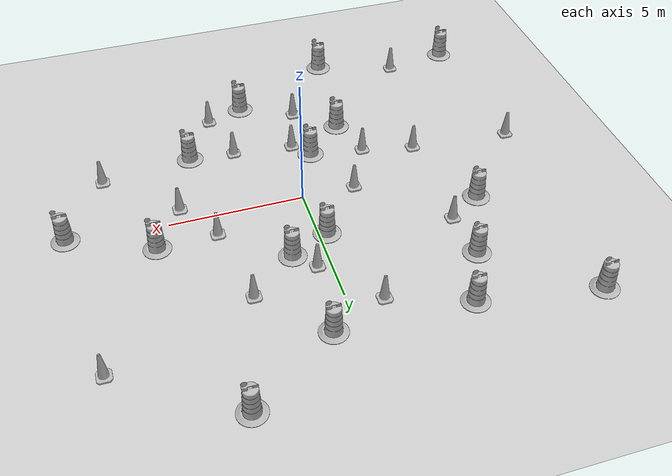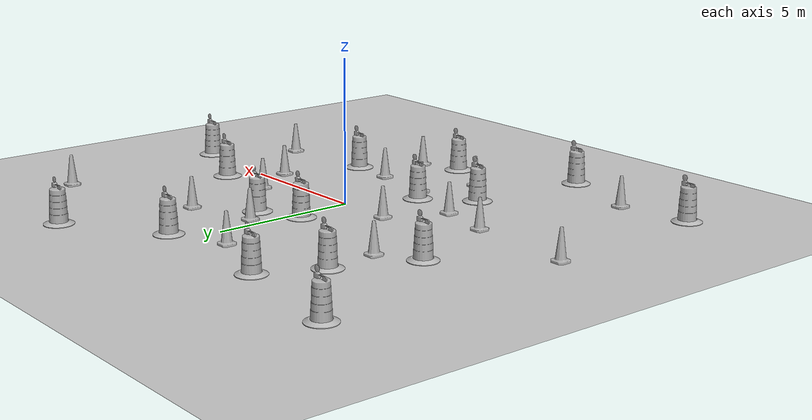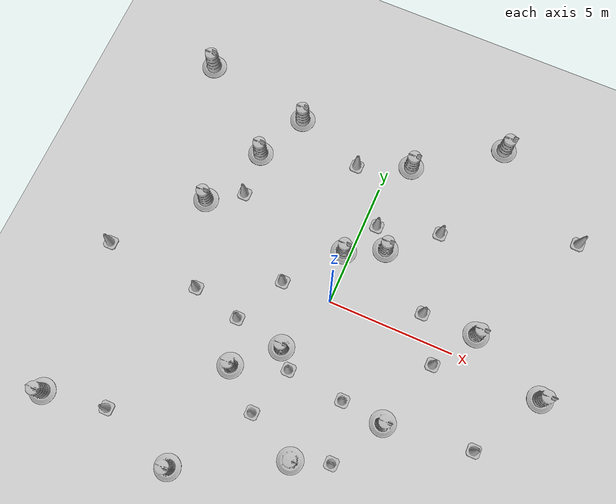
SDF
<sdf version="1.7">
 <world name="default">
  <light name="sun" type="directional">
   <pose>0 0 10 0 -0 0</pose>
   <diffuse>0.8 0.8 0.8 1</diffuse>
   <specular>0.2 0.2 0.2 1</specular>
   <attenuation>
    <range>1000</range>
    <constant>0.9</constant>
    <linear>0.01</linear>
    <quadratic>0.001</quadratic>
   </attenuation>
   <direction>-0.5 0.1 -0.9</direction>
   <spot><inner_angle>0</inner_angle><outer_angle>0</outer_angle><falloff>0</falloff></spot>
  </light>
  <model name="ground_plane">
   <static>1</static>
   <link name="link">
    <collision name="collision">
     <geometry><plane><normal>0 0 1</normal><size>100 100</size></plane></geometry>
     <surface>
      <contact><collide_bitmask>65535</collide_bitmask></contact>
      <friction><ode><mu>100</mu><mu2>50</mu2></ode></friction>
     </surface>
    </collision>
    <visual name="visual">
     <cast_shadows>0</cast_shadows>
     <geometry><plane><normal>0 0 1</normal><size>100 100</size></plane></geometry>
     <material>
      <script><uri>file://media/materials/scripts/gazebo.material</uri><name>Gazebo/Grey</name></script>
     </material>
    </visual>
   </link>
  </model>
  <gravity>0 0 -9.8</gravity>
  <magnetic_field>6e-06 2.3e-05 -4.2e-05</magnetic_field>
  <atmosphere type="adiabatic"/>
  <physics type="ode">
   <max_step_size>0.001</max_step_size>
   <real_time_factor>1</real_time_factor>
   <real_time_update_rate>1000</real_time_update_rate>
  </physics>
  <scene><ambient>0.4 0.4 0.4 1</ambient><background>0.7 0.7 0.7 1</background><shadows>1</shadows></scene>
  <audio><device>default</device></audio>
  <spherical_coordinates>
   <surface_model>EARTH_WGS84</surface_model>
   <latitude_deg>0</latitude_deg>
   <longitude_deg>0</longitude_deg>
   <elevation>0</elevation>
   <heading_deg>0</heading_deg>
  </spherical_coordinates>
  <model name="Construction Cone">
   <link name="link">
    <collision name="collision">
     <geometry>
      <mesh><scale>10 10 10</scale><uri>model://construction_cone/meshes/construction_cone.dae</uri></mesh>
     </geometry>
    </collision>
    <visual name="visual">
     <geometry>
      <mesh><scale>10 10 10</scale><uri>model://construction_cone/meshes/construction_cone.dae</uri></mesh>
     </geometry>
    </visual>
    <inertial>
     <inertia><ixx>1</ixx><ixy>0</ixy><ixz>0</ixz><iyy>1</iyy><iyz>0</iyz><izz>1</izz></inertia>
     <mass>1</mass>
    </inertial>
   </link>
   <pose>-0.401408 -3.01214 -0 0 -0 0</pose>
  </model>
  <model name="Construction Barrel">
   <link name="link">
    <inertial>
     <pose>0 0 0.4 0 -0 0</pose>
     <mass>500</mass>
     <inertia><ixx>51.2096</ixx><iyy>51.2096</iyy><izz>25</izz><ixy>0</ixy><ixz>0</ixz><iyz>0</iyz></inertia>
    </inertial>
    <collision name="collision">
     <geometry><mesh><uri>model://construction_barrel/meshes/construction_barrel.dae</uri></mesh></geometry>
    </collision>
    <visual name="visual">
     <geometry><mesh><uri>model://construction_barrel/meshes/construction_barrel.dae</uri></mesh></geometry>
    </visual>
   </link>
   <pose>3.58649 -3.42054 -0 0 0 -2.8e-05</pose>
  </model>
  <model name="Construction Cone_clone">
   <link name="link">
    <collision name="collision">
     <geometry>
      <mesh><scale>10 10 10</scale><uri>model://construction_cone/meshes/construction_cone.dae</uri></mesh>
     </geometry>
    </collision>
    <visual name="visual">
     <geometry>
      <mesh><scale>10 10 10</scale><uri>model://construction_cone/meshes/construction_cone.dae</uri></mesh>
     </geometry>
    </visual>
    <inertial>
     <inertia><ixx>1</ixx><ixy>0</ixy><ixz>0</ixz><iyy>1</iyy><iyz>0</iyz><izz>1</izz></inertia>
     <mass>1</mass>
    </inertial>
   </link>
   <pose>-4.95625 -1.55766 -1e-05 -0 -0 -0</pose>
  </model>
  <model name="Construction Cone_clone_0">
   <link name="link">
    <collision name="collision">
     <geometry>
      <mesh><scale>10 10 10</scale><uri>model://construction_cone/meshes/construction_cone.dae</uri></mesh>
     </geometry>
    </collision>
    <visual name="visual">
     <geometry>
      <mesh><scale>10 10 10</scale><uri>model://construction_cone/meshes/construction_cone.dae</uri></mesh>
     </geometry>
    </visual>
    <inertial>
     <inertia><ixx>1</ixx><ixy>0</ixy><ixz>0</ixz><iyy>1</iyy><iyz>0</iyz><izz>1</izz></inertia>
     <mass>1</mass>
    </inertial>
   </link>
   <pose>-4.86605 2.6734 -0 0 -1e-06 0</pose>
  </model>
  <model name="Construction Cone_clone_1">
   <link name="link">
    <collision name="collision">
     <geometry>
      <mesh><scale>10 10 10</scale><uri>model://construction_cone/meshes/construction_cone.dae</uri></mesh>
     </geometry>
    </collision>
    <visual name="visual">
     <geometry>
      <mesh><scale>10 10 10</scale><uri>model://construction_cone/meshes/construction_cone.dae</uri></mesh>
     </geometry>
    </visual>
    <inertial>
     <inertia><ixx>1</ixx><ixy>0</ixy><ixz>0</ixz><iyy>1</iyy><iyz>0</iyz><izz>1</izz></inertia>
     <mass>1</mass>
    </inertial>
   </link>
   <pose>2.89081 4.23318 -0 0 -0 0</pose>
  </model>
  <model name="Construction Cone_clone_2">
   <link name="link">
    <collision name="collision">
     <geometry>
      <mesh><scale>10 10 10</scale><uri>model://construction_cone/meshes/construction_cone.dae</uri></mesh>
     </geometry>
    </collision>
    <visual name="visual">
     <geometry>
      <mesh><scale>10 10 10</scale><uri>model://construction_cone/meshes/construction_cone.dae</uri></mesh>
     </geometry>
    </visual>
    <inertial>
     <inertia><ixx>1</ixx><ixy>0</ixy><ixz>0</ixz><iyy>1</iyy><iyz>0</iyz><izz>1</izz></inertia>
     <mass>1</mass>
    </inertial>
   </link>
   <pose>4.47853 -0.679007 -1e-05 -1e-06 0 0</pose>
  </model>
  <model name="Construction Cone_clone_3">
   <link name="link">
    <collision name="collision">
     <geometry>
      <mesh><scale>10 10 10</scale><uri>model://construction_cone/meshes/construction_cone.dae</uri></mesh>
     </geometry>
    </collision>
    <visual name="visual">
     <geometry>
      <mesh><scale>10 10 10</scale><uri>model://construction_cone/meshes/construction_cone.dae</uri></mesh>
     </geometry>
    </visual>
    <inertial>
     <inertia><ixx>1</ixx><ixy>0</ixy><ixz>0</ixz><iyy>1</iyy><iyz>0</iyz><izz>1</izz></inertia>
     <mass>1</mass>
    </inertial>
   </link>
   <pose>-1 -5 -0 0 -1e-06 0</pose>
  </model>
  <model name="Construction Cone_clone_4">
   <link name="link">
    <collision name="collision">
     <geometry>
      <mesh><scale>10 10 10</scale><uri>model://construction_cone/meshes/construction_cone.dae</uri></mesh>
     </geometry>
    </collision>
    <visual name="visual">
     <geometry>
      <mesh><scale>10 10 10</scale><uri>model://construction_cone/meshes/construction_cone.dae</uri></mesh>
     </geometry>
    </visual>
    <inertial>
     <inertia><ixx>1</ixx><ixy>0</ixy><ixz>0</ixz><iyy>1</iyy><iyz>0</iyz><izz>1</izz></inertia>
     <mass>1</mass>
    </inertial>
   </link>
   <pose>0.489601 3.52543 -0 0 -1e-06 0</pose>
  </model>
  <model name="Construction Cone_clone_5">
   <link name="link">
    <collision name="collision">
     <geometry>
      <mesh><scale>10 10 10</scale><uri>model://construction_cone/meshes/construction_cone.dae</uri></mesh>
     </geometry>
    </collision>
    <visual name="visual">
     <geometry>
      <mesh><scale>10 10 10</scale><uri>model://construction_cone/meshes/construction_cone.dae</uri></mesh>
     </geometry>
    </visual>
    <inertial>
     <inertia><ixx>1</ixx><ixy>0</ixy><ixz>0</ixz><iyy>1</iyy><iyz>0</iyz><izz>1</izz></inertia>
     <mass>1</mass>
    </inertial>
   </link>
   <pose>3.41768 1 -0 0 -1e-06 0</pose>
  </model>
  <model name="Construction Cone_clone_6">
   <link name="link">
    <collision name="collision">
     <geometry>
      <mesh><scale>10 10 10</scale><uri>model://construction_cone/meshes/construction_cone.dae</uri></mesh>
     </geometry>
    </collision>
    <visual name="visual">
     <geometry>
      <mesh><scale>10 10 10</scale><uri>model://construction_cone/meshes/construction_cone.dae</uri></mesh>
     </geometry>
    </visual>
    <inertial>
     <inertia><ixx>1</ixx><ixy>0</ixy><ixz>0</ixz><iyy>1</iyy><iyz>0</iyz><izz>1</izz></inertia>
     <mass>1</mass>
    </inertial>
   </link>
   <pose>1.89026 -3.25714 -0 0 -0 0</pose>
  </model>
  <model name="Construction Cone_clone_7">
   <link name="link">
    <collision name="collision">
     <geometry>
      <mesh><scale>10 10 10</scale><uri>model://construction_cone/meshes/construction_cone.dae</uri></mesh>
     </geometry>
    </collision>
    <visual name="visual">
     <geometry>
      <mesh><scale>10 10 10</scale><uri>model://construction_cone/meshes/construction_cone.dae</uri></mesh>
     </geometry>
    </visual>
    <inertial>
     <inertia><ixx>1</ixx><ixy>0</ixy><ixz>0</ixz><iyy>1</iyy><iyz>0</iyz><izz>1</izz></inertia>
     <mass>1</mass>
    </inertial>
   </link>
   <pose>-2 -0 -0 0 -0 0</pose>
  </model>
  <model name="Construction Cone_clone_8">
   <link name="link">
    <collision name="collision">
     <geometry>
      <mesh><scale>10 10 10</scale><uri>model://construction_cone/meshes/construction_cone.dae</uri></mesh>
     </geometry>
    </collision>
    <visual name="visual">
     <geometry>
      <mesh><scale>10 10 10</scale><uri>model://construction_cone/meshes/construction_cone.dae</uri></mesh>
     </geometry>
    </visual>
    <inertial>
     <inertia><ixx>1</ixx><ixy>0</ixy><ixz>0</ixz><iyy>1</iyy><iyz>0</iyz><izz>1</izz></inertia>
     <mass>1</mass>
    </inertial>
   </link>
   <pose>-3 -2 -0 0 -1e-06 0</pose>
  </model>
  <model name="Construction Cone_clone_9">
   <link name="link">
    <collision name="collision">
     <geometry>
      <mesh><scale>10 10 10</scale><uri>model://construction_cone/meshes/construction_cone.dae</uri></mesh>
     </geometry>
    </collision>
    <visual name="visual">
     <geometry>
      <mesh><scale>10 10 10</scale><uri>model://construction_cone/meshes/construction_cone.dae</uri></mesh>
     </geometry>
    </visual>
    <inertial>
     <inertia><ixx>1</ixx><ixy>0</ixy><ixz>0</ixz><iyy>1</iyy><iyz>0</iyz><izz>1</izz></inertia>
     <mass>1</mass>
    </inertial>
   </link>
   <pose>-1.21518 5.54694 -0 0 -1e-06 0</pose>
  </model>
  <model name="Construction Cone_clone_10">
   <link name="link">
    <collision name="collision">
     <geometry>
      <mesh><scale>10 10 10</scale><uri>model://construction_cone/meshes/construction_cone.dae</uri></mesh>
     </geometry>
    </collision>
    <visual name="visual">
     <geometry>
      <mesh><scale>10 10 10</scale><uri>model://construction_cone/meshes/construction_cone.dae</uri></mesh>
     </geometry>
    </visual>
    <inertial>
     <inertia><ixx>1</ixx><ixy>0</ixy><ixz>0</ixz><iyy>1</iyy><iyz>0</iyz><izz>1</izz></inertia>
     <mass>1</mass>
    </inertial>
   </link>
   <pose>-8.82349 -1.26208 -0 0 -1e-06 0</pose>
  </model>
  <model name="Construction Cone_clone_11">
   <link name="link">
    <collision name="collision">
     <geometry>
      <mesh><scale>10 10 10</scale><uri>model://construction_cone/meshes/construction_cone.dae</uri></mesh>
     </geometry>
    </collision>
    <visual name="visual">
     <geometry>
      <mesh><scale>10 10 10</scale><uri>model://construction_cone/meshes/construction_cone.dae</uri></mesh>
     </geometry>
    </visual>
    <inertial>
     <inertia><ixx>1</ixx><ixy>0</ixy><ixz>0</ixz><iyy>1</iyy><iyz>0</iyz><izz>1</izz></inertia>
     <mass>1</mass>
    </inertial>
   </link>
   <pose>-6 -7 -0 1e-06 -0 0</pose>
  </model>
  <model name="Construction Cone_clone_12">
   <link name="link">
    <collision name="collision">
     <geometry>
      <mesh><scale>10 10 10</scale><uri>model://construction_cone/meshes/construction_cone.dae</uri></mesh>
     </geometry>
    </collision>
    <visual name="visual">
     <geometry>
      <mesh><scale>10 10 10</scale><uri>model://construction_cone/meshes/construction_cone.dae</uri></mesh>
     </geometry>
    </visual>
    <inertial>
     <inertia><ixx>1</ixx><ixy>0</ixy><ixz>0</ixz><iyy>1</iyy><iyz>0</iyz><izz>1</izz></inertia>
     <mass>1</mass>
    </inertial>
   </link>
   <pose>2.41052 -5.49404 -1e-05 -0 -0 -0</pose>
  </model>
  <model name="Construction Cone_clone_13">
   <link name="link">
    <collision name="collision">
     <geometry>
      <mesh><scale>10 10 10</scale><uri>model://construction_cone/meshes/construction_cone.dae</uri></mesh>
     </geometry>
    </collision>
    <visual name="visual">
     <geometry>
      <mesh><scale>10 10 10</scale><uri>model://construction_cone/meshes/construction_cone.dae</uri></mesh>
     </geometry>
    </visual>
    <inertial>
     <inertia><ixx>1</ixx><ixy>0</ixy><ixz>0</ixz><iyy>1</iyy><iyz>0</iyz><izz>1</izz></inertia>
     <mass>1</mass>
    </inertial>
   </link>
   <pose>8 6 0 -0 -0 -0</pose>
  </model>
  <model name="Construction Cone_clone_14">
   <link name="link">
    <collision name="collision">
     <geometry>
      <mesh><scale>10 10 10</scale><uri>model://construction_cone/meshes/construction_cone.dae</uri></mesh>
     </geometry>
    </collision>
    <visual name="visual">
     <geometry>
      <mesh><scale>10 10 10</scale><uri>model://construction_cone/meshes/construction_cone.dae</uri></mesh>
     </geometry>
    </visual>
    <inertial>
     <inertia><ixx>1</ixx><ixy>0</ixy><ixz>0</ixz><iyy>1</iyy><iyz>0</iyz><izz>1</izz></inertia>
     <mass>1</mass>
    </inertial>
   </link>
   <pose>7 -3 -0 0 -0 0</pose>
  </model>
  <model name="Construction Barrel_clone">
   <link name="link">
    <inertial>
     <pose>0 0 0.4 0 -0 0</pose>
     <mass>500</mass>
     <inertia><ixx>51.2096</ixx><iyy>51.2096</iyy><izz>25</izz><ixy>0</ixy><ixz>0</ixz><iyz>0</iyz></inertia>
    </inertial>
    <collision name="collision">
     <geometry><mesh><uri>model://construction_barrel/meshes/construction_barrel.dae</uri></mesh></geometry>
    </collision>
    <visual name="visual">
     <geometry><mesh><uri>model://construction_barrel/meshes/construction_barrel.dae</uri></mesh></geometry>
    </visual>
   </link>
   <pose>5.586 1.0599 -2e-06 7e-06 -4e-06 -2.9e-05</pose>
  </model>
  <model name="Construction Barrel_clone_0">
   <link name="link">
    <inertial>
     <pose>0 0 0.4 0 -0 0</pose>
     <mass>500</mass>
     <inertia><ixx>51.2096</ixx><iyy>51.2096</iyy><izz>25</izz><ixy>0</ixy><ixz>0</ixz><iyz>0</iyz></inertia>
    </inertial>
    <collision name="collision">
     <geometry><mesh><uri>model://construction_barrel/meshes/construction_barrel.dae</uri></mesh></geometry>
    </collision>
    <visual name="visual">
     <geometry><mesh><uri>model://construction_barrel/meshes/construction_barrel.dae</uri></mesh></geometry>
    </visual>
   </link>
   <pose>1.16335 2.78242 -0 0 -0 -2.8e-05</pose>
  </model>
  <model name="Construction Barrel_clone_1">
   <link name="link">
    <inertial>
     <pose>0 0 0.4 0 -0 0</pose>
     <mass>500</mass>
     <inertia><ixx>51.2096</ixx><iyy>51.2096</iyy><izz>25</izz><ixy>0</ixy><ixz>0</ixz><iyz>0</iyz></inertia>
    </inertial>
    <collision name="collision">
     <geometry><mesh><uri>model://construction_barrel/meshes/construction_barrel.dae</uri></mesh></geometry>
    </collision>
    <visual name="visual">
     <geometry><mesh><uri>model://construction_barrel/meshes/construction_barrel.dae</uri></mesh></geometry>
    </visual>
   </link>
   <pose>-2.48562 -3.74223 -1e-06 4e-06 -2e-06 -2.6e-05</pose>
  </model>
  <model name="Construction Barrel_clone_2">
   <link name="link">
    <inertial>
     <pose>0 0 0.4 0 -0 0</pose>
     <mass>500</mass>
     <inertia><ixx>51.2096</ixx><iyy>51.2096</iyy><izz>25</izz><ixy>0</ixy><ixz>0</ixz><iyz>0</iyz></inertia>
    </inertial>
    <collision name="collision">
     <geometry><mesh><uri>model://construction_barrel/meshes/construction_barrel.dae</uri></mesh></geometry>
    </collision>
    <visual name="visual">
     <geometry><mesh><uri>model://construction_barrel/meshes/construction_barrel.dae</uri></mesh></geometry>
    </visual>
   </link>
   <pose>0.999926 -6.00002 0 0 0 -2.8e-05</pose>
  </model>
  <model name="Construction Barrel_clone_3">
   <link name="link">
    <inertial>
     <pose>0 0 0.4 0 -0 0</pose>
     <mass>500</mass>
     <inertia><ixx>51.2096</ixx><iyy>51.2096</iyy><izz>25</izz><ixy>0</ixy><ixz>0</ixz><iyz>0</iyz></inertia>
    </inertial>
    <collision name="collision">
     <geometry><mesh><uri>model://construction_barrel/meshes/construction_barrel.dae</uri></mesh></geometry>
    </collision>
    <visual name="visual">
     <geometry><mesh><uri>model://construction_barrel/meshes/construction_barrel.dae</uri></mesh></geometry>
    </visual>
   </link>
   <pose>-5.00007 4.51141 -2e-06 1e-06 8e-06 -2.7e-05</pose>
  </model>
  <model name="Construction Barrel_clone_4">
   <link name="link">
    <inertial>
     <pose>0 0 0.4 0 -0 0</pose>
     <mass>500</mass>
     <inertia><ixx>51.2096</ixx><iyy>51.2096</iyy><izz>25</izz><ixy>0</ixy><ixz>0</ixz><iyz>0</iyz></inertia>
    </inertial>
    <collision name="collision">
     <geometry><mesh><uri>model://construction_barrel/meshes/construction_barrel.dae</uri></mesh></geometry>
    </collision>
    <visual name="visual">
     <geometry><mesh><uri>model://construction_barrel/meshes/construction_barrel.dae</uri></mesh></geometry>
    </visual>
   </link>
   <pose>-6.1771 1.84058 -2e-06 -5e-06 -4e-06 -2.7e-05</pose>
  </model>
  <model name="Construction Barrel_clone_5">
   <link name="link">
    <inertial>
     <pose>0 0 0.4 0 -0 0</pose>
     <mass>500</mass>
     <inertia><ixx>51.2096</ixx><iyy>51.2096</iyy><izz>25</izz><ixy>0</ixy><ixz>0</ixz><iyz>0</iyz></inertia>
    </inertial>
    <collision name="collision">
     <geometry><mesh><uri>model://construction_barrel/meshes/construction_barrel.dae</uri></mesh></geometry>
    </collision>
    <visual name="visual">
     <geometry><mesh><uri>model://construction_barrel/meshes/construction_barrel.dae</uri></mesh></geometry>
    </visual>
   </link>
   <pose>-8.49456 -7.40439 0 0 0 -2.5e-05</pose>
  </model>
  <model name="Construction Barrel_clone_6">
   <link name="link">
    <inertial>
     <pose>0 0 0.4 0 -0 0</pose>
     <mass>500</mass>
     <inertia><ixx>51.2096</ixx><iyy>51.2096</iyy><izz>25</izz><ixy>0</ixy><ixz>0</ixz><iyz>0</iyz></inertia>
    </inertial>
    <collision name="collision">
     <geometry><mesh><uri>model://construction_barrel/meshes/construction_barrel.dae</uri></mesh></geometry>
    </collision>
    <visual name="visual">
     <geometry><mesh><uri>model://construction_barrel/meshes/construction_barrel.dae</uri></mesh></geometry>
    </visual>
   </link>
   <pose>-3.00006 -8.00002 -2e-06 -7e-06 -4e-06 -2.6e-05</pose>
  </model>
  <model name="Construction Barrel_clone_7">
   <link name="link">
    <inertial>
     <pose>0 0 0.4 0 -0 0</pose>
     <mass>500</mass>
     <inertia><ixx>51.2096</ixx><iyy>51.2096</iyy><izz>25</izz><ixy>0</ixy><ixz>0</ixz><iyz>0</iyz></inertia>
    </inertial>
    <collision name="collision">
     <geometry><mesh><uri>model://construction_barrel/meshes/construction_barrel.dae</uri></mesh></geometry>
    </collision>
    <visual name="visual">
     <geometry><mesh><uri>model://construction_barrel/meshes/construction_barrel.dae</uri></mesh></geometry>
    </visual>
   </link>
   <pose>3.99994 8.5716 -0 0 0 -2.6e-05</pose>
  </model>
  <model name="Construction Barrel_clone_8">
   <link name="link">
    <inertial>
     <pose>0 0 0.4 0 -0 0</pose>
     <mass>500</mass>
     <inertia><ixx>51.2096</ixx><iyy>51.2096</iyy><izz>25</izz><ixy>0</ixy><ixz>0</ixz><iyz>0</iyz></inertia>
    </inertial>
    <collision name="collision">
     <geometry><mesh><uri>model://construction_barrel/meshes/construction_barrel.dae</uri></mesh></geometry>
    </collision>
    <visual name="visual">
     <geometry><mesh><uri>model://construction_barrel/meshes/construction_barrel.dae</uri></mesh></geometry>
    </visual>
   </link>
   <pose>8.61965 -0.269121 1e-06 3e-06 2e-06 -2.2e-05</pose>
  </model>
  <model name="Construction Barrel_clone_9">
   <link name="link">
    <inertial>
     <pose>0 0 0.4 0 -0 0</pose>
     <mass>500</mass>
     <inertia><ixx>51.2096</ixx><iyy>51.2096</iyy><izz>25</izz><ixy>0</ixy><ixz>0</ixz><iyz>0</iyz></inertia>
    </inertial>
    <collision name="collision">
     <geometry><mesh><uri>model://construction_barrel/meshes/construction_barrel.dae</uri></mesh></geometry>
    </collision>
    <visual name="visual">
     <geometry><mesh><uri>model://construction_barrel/meshes/construction_barrel.dae</uri></mesh></geometry>
    </visual>
   </link>
   <pose>-4.03895 6.55019 2e-06 2e-06 4e-06 -2.1e-05</pose>
  </model>
  <model name="Construction Barrel_clone_10">
   <link name="link">
    <inertial>
     <pose>0 0 0.4 0 -0 0</pose>
     <mass>500</mass>
     <inertia><ixx>51.2096</ixx><iyy>51.2096</iyy><izz>25</izz><ixy>0</ixy><ixz>0</ixz><iyz>0</iyz></inertia>
    </inertial>
    <collision name="collision">
     <geometry><mesh><uri>model://construction_barrel/meshes/construction_barrel.dae</uri></mesh></geometry>
    </collision>
    <visual name="visual">
     <geometry><mesh><uri>model://construction_barrel/meshes/construction_barrel.dae</uri></mesh></geometry>
    </visual>
   </link>
   <pose>-0.989058 -2.35401 0 2e-06 0 -1.7e-05</pose>
  </model>
  <model name="Construction Barrel_clone_11">
   <link name="link">
    <inertial>
     <pose>0 0 0.4 0 -0 0</pose>
     <mass>500</mass>
     <inertia><ixx>51.2096</ixx><iyy>51.2096</iyy><izz>25</izz><ixy>0</ixy><ixz>0</ixz><iyz>0</iyz></inertia>
    </inertial>
    <collision name="collision">
     <geometry><mesh><uri>model://construction_barrel/meshes/construction_barrel.dae</uri></mesh></geometry>
    </collision>
    <visual name="visual">
     <geometry><mesh><uri>model://construction_barrel/meshes/construction_barrel.dae</uri></mesh></geometry>
    </visual>
   </link>
   <pose>-0.305695 2.05825 0 0 0 -1.9e-05</pose>
  </model>
  <model name="Construction Barrel_clone_12">
   <link name="link">
    <inertial>
     <pose>0 0 0.4 0 -0 0</pose>
     <mass>500</mass>
     <inertia><ixx>51.2096</ixx><iyy>51.2096</iyy><izz>25</izz><ixy>0</ixy><ixz>0</ixz><iyz>0</iyz></inertia>
    </inertial>
    <collision name="collision">
     <geometry><mesh><uri>model://construction_barrel/meshes/construction_barrel.dae</uri></mesh></geometry>
    </collision>
    <visual name="visual">
     <geometry><mesh><uri>model://construction_barrel/meshes/construction_barrel.dae</uri></mesh></geometry>
    </visual>
   </link>
   <pose>-8.40649 7.28359 0 0 0 -1.9e-05</pose>
  </model>
  <model name="Construction Barrel_clone_13">
   <link name="link">
    <inertial>
     <pose>0 0 0.4 0 -0 0</pose>
     <mass>500</mass>
     <inertia><ixx>51.2096</ixx><iyy>51.2096</iyy><izz>25</izz><ixy>0</ixy><ixz>0</ixz><iyz>0</iyz></inertia>
    </inertial>
    <collision name="collision">
     <geometry><mesh><uri>model://construction_barrel/meshes/construction_barrel.dae</uri></mesh></geometry>
    </collision>
    <visual name="visual">
     <geometry><mesh><uri>model://construction_barrel/meshes/construction_barrel.dae</uri></mesh></geometry>
    </visual>
   </link>
   <pose>0.811735 6.39644 -0 0 0 -1.6e-05</pose>
  </model>
 </world>
</sdf>
